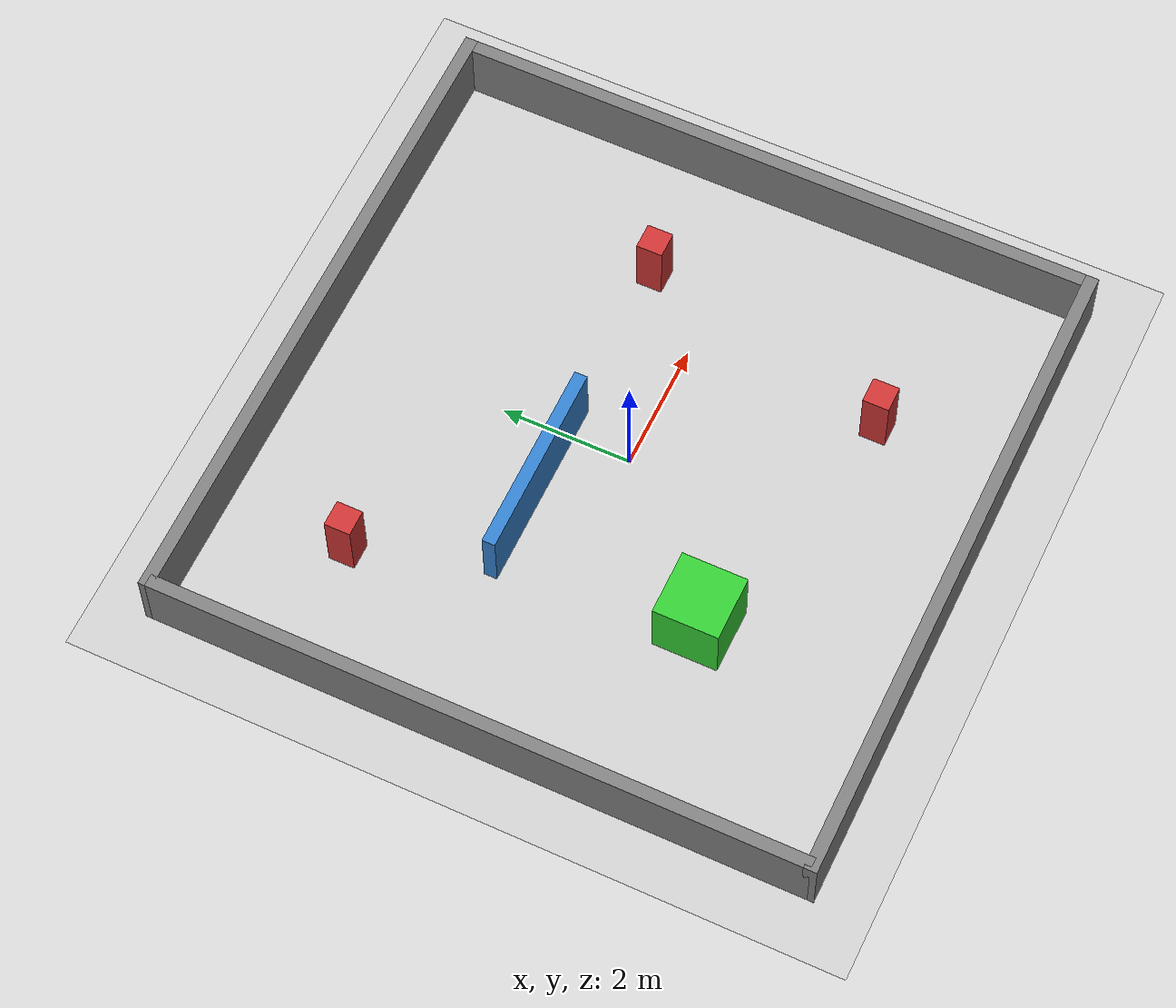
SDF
<?xml version="1.0" ?>
<sdf version="1.6">
  <world name="slam_world">

    <physics name="1ms" type="ignored">
      <max_step_size>0.004</max_step_size>
      <real_time_factor>1.0</real_time_factor>
      <real_time_update_rate>100</real_time_update_rate>  <!-- ← too high for container -->
    </physics>

    <plugin filename="ignition-gazebo-physics-system"
            name="ignition::gazebo::systems::Physics"/>
    <plugin filename="ignition-gazebo-user-commands-system"
            name="ignition::gazebo::systems::UserCommands"/>
    <plugin filename="ignition-gazebo-scene-broadcaster-system"
            name="ignition::gazebo::systems::SceneBroadcaster"/>

    <light type="directional" name="sun">
      <cast_shadows>true</cast_shadows>
      <pose>0 0 10 0 0 0</pose>
      <diffuse>1 1 1 1</diffuse>
      <specular>0.5 0.5 0.5 1</specular>
      <attenuation>
        <range>1000</range>
        <constant>0.09</constant>
        <linear>0.001</linear>
        <quadratic>0.001</quadratic>
      </attenuation>
      <direction>-0.5 0.1 -0.9</direction>
    </light>

    <model name="ground_plane">
      <static>true</static>
      <link name="link">
        <collision name="collision">
          <geometry>
            <plane>
              <normal>0 0 1</normal>
              <size>100 100</size>
            </plane>
          </geometry>
          <surface>
            <friction>
              <ode>
                <mu>100</mu>
                <mu2>50</mu2>
              </ode>
            </friction>
          </surface>
        </collision>
        <visual name="visual">
          <cast_shadows>false</cast_shadows>
          <geometry>
            <plane>
              <normal>0 0 1</normal>
              <size>100 100</size>
            </plane>
          </geometry>
          <material>
            <ambient>0.8 0.8 0.8 1</ambient>
            <diffuse>0.8 0.8 0.8 1</diffuse>
            <specular>0.01 0.01 0.01 1</specular>
          </material>
        </visual>
      </link>
    </model>

    <model name="wall_north">
      <static>true</static>
      <pose>0 5 0.5 0 0 0</pose>
      <link name="link">
        <collision name="collision">
          <geometry><box><size>10.2 0.2 1</size></box></geometry>
        </collision>
        <visual name="visual">
          <geometry><box><size>10.2 0.2 1</size></box></geometry>
          <material>
            <ambient>0.5 0.5 0.5 1</ambient>
            <diffuse>0.5 0.5 0.5 1</diffuse>
          </material>
        </visual>
      </link>
    </model>

    <model name="wall_south">
      <static>true</static>
      <pose>0 -5 0.5 0 0 0</pose>
      <link name="link">
        <collision name="collision">
          <geometry><box><size>10.2 0.2 1</size></box></geometry>
        </collision>
        <visual name="visual">
          <geometry><box><size>10.2 0.2 1</size></box></geometry>
          <material>
            <ambient>0.5 0.5 0.5 1</ambient>
            <diffuse>0.5 0.5 0.5 1</diffuse>
          </material>
        </visual>
      </link>
    </model>

    <model name="wall_east">
      <static>true</static>
      <pose>5 0 0.5 0 0 0</pose>
      <link name="link">
        <collision name="collision">
          <geometry><box><size>0.2 10 1</size></box></geometry>
        </collision>
        <visual name="visual">
          <geometry><box><size>0.2 10 1</size></box></geometry>
          <material>
            <ambient>0.5 0.5 0.5 1</ambient>
            <diffuse>0.5 0.5 0.5 1</diffuse>
          </material>
        </visual>
      </link>
    </model>

    <model name="wall_west">
      <static>true</static>
      <pose>-5 0 0.5 0 0 0</pose>
      <link name="link">
        <collision name="collision">
          <geometry><box><size>0.2 10 1</size></box></geometry>
        </collision>
        <visual name="visual">
          <geometry><box><size>0.2 10 1</size></box></geometry>
          <material>
            <ambient>0.5 0.5 0.5 1</ambient>
            <diffuse>0.5 0.5 0.5 1</diffuse>
          </material>
        </visual>
      </link>
    </model>

    <model name="pillar_1">
      <static>true</static>
      <pose>-3 3 0.5 0 0 0</pose>
      <link name="link">
        <collision name="collision">
          <geometry><box><size>0.4 0.4 1</size></box></geometry>
        </collision>
        <visual name="visual">
          <geometry><box><size>0.4 0.4 1</size></box></geometry>
          <material>
            <ambient>0.8 0.2 0.2 1</ambient>
            <diffuse>0.8 0.2 0.2 1</diffuse>
          </material>
        </visual>
      </link>
    </model>

    <model name="pillar_2">
      <static>true</static>
      <pose>3 1 0.5 0 0 0</pose>
      <link name="link">
        <collision name="collision">
          <geometry><box><size>0.4 0.4 1</size></box></geometry>
        </collision>
        <visual name="visual">
          <geometry><box><size>0.4 0.4 1</size></box></geometry>
          <material>
            <ambient>0.8 0.2 0.2 1</ambient>
            <diffuse>0.8 0.2 0.2 1</diffuse>
          </material>
        </visual>
      </link>
    </model>

    <model name="pillar_3">
      <static>true</static>
      <pose>2 -3 0.5 0 0 0</pose>
      <link name="link">
        <collision name="collision">
          <geometry><box><size>0.4 0.4 1</size></box></geometry>
        </collision>
        <visual name="visual">
          <geometry><box><size>0.4 0.4 1</size></box></geometry>
          <material>
            <ambient>0.8 0.2 0.2 1</ambient>
            <diffuse>0.8 0.2 0.2 1</diffuse>
          </material>
        </visual>
      </link>
    </model>

    <model name="inner_wall_1">
      <static>true</static>
      <pose>-1 1 0.5 0 0 0</pose>
      <link name="link">
        <collision name="collision">
          <geometry><box><size>3 0.2 1</size></box></geometry>
        </collision>
        <visual name="visual">
          <geometry><box><size>3 0.2 1</size></box></geometry>
          <material>
            <ambient>0.2 0.5 0.8 1</ambient>
            <diffuse>0.2 0.5 0.8 1</diffuse>
          </material>
        </visual>
      </link>
    </model>

    <model name="big_box">
      <static>true</static>
      <pose>-2 -2 0.5 0 0 0</pose>
      <link name="link">
        <collision name="collision">
          <geometry><box><size>1 1 1</size></box></geometry>
        </collision>
        <visual name="visual">
          <geometry><box><size>1 1 1</size></box></geometry>
          <material>
            <ambient>0.2 0.8 0.2 1</ambient>
            <diffuse>0.2 0.8 0.2 1</diffuse>
          </material>
        </visual>
      </link>
    </model>

  </world>
</sdf>
